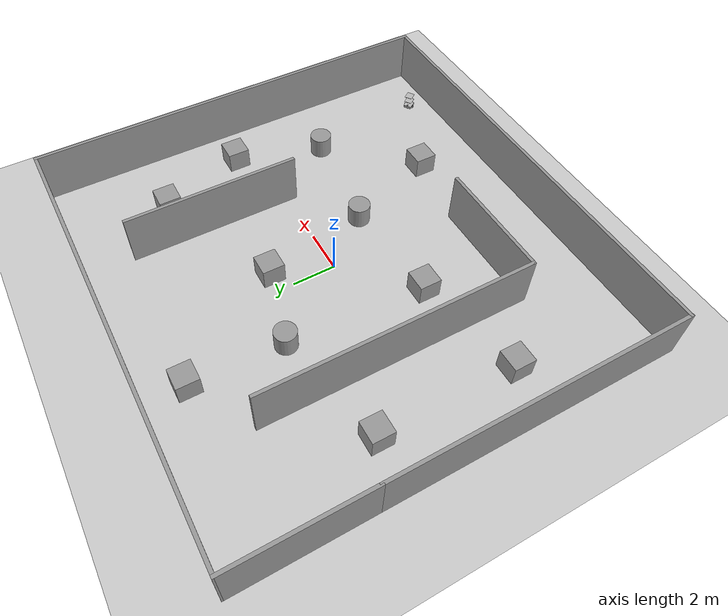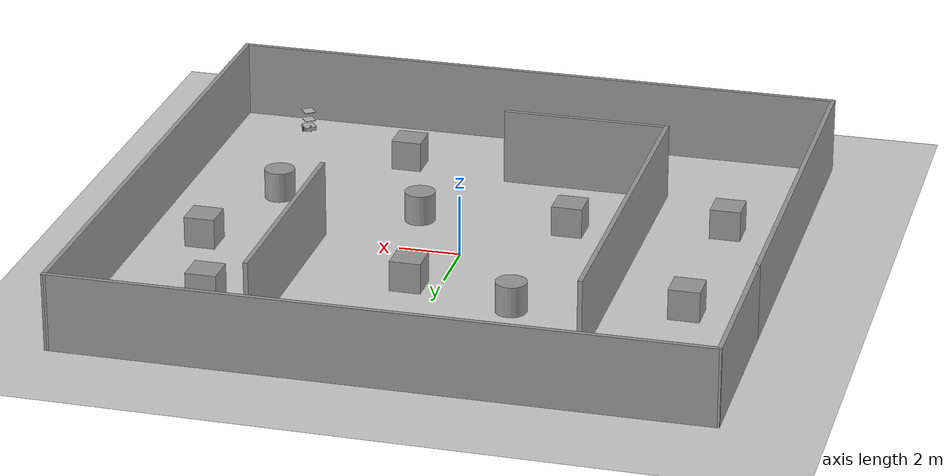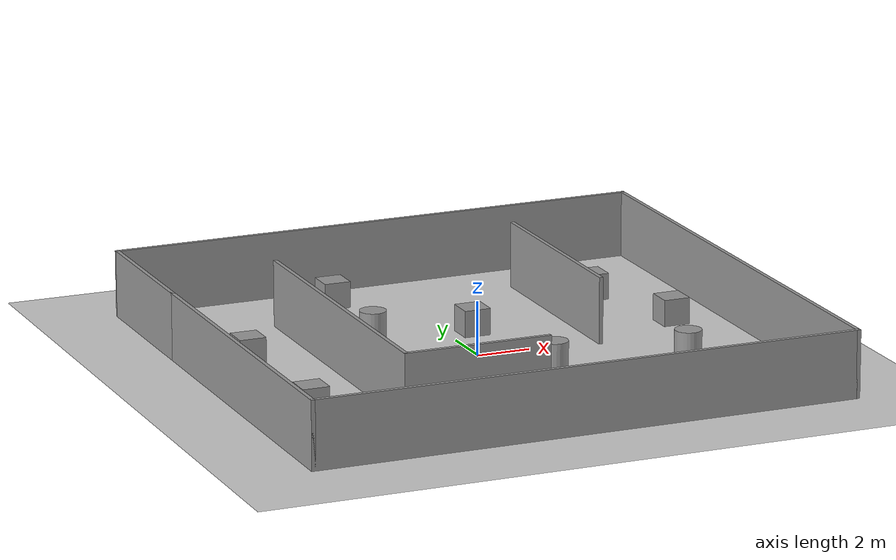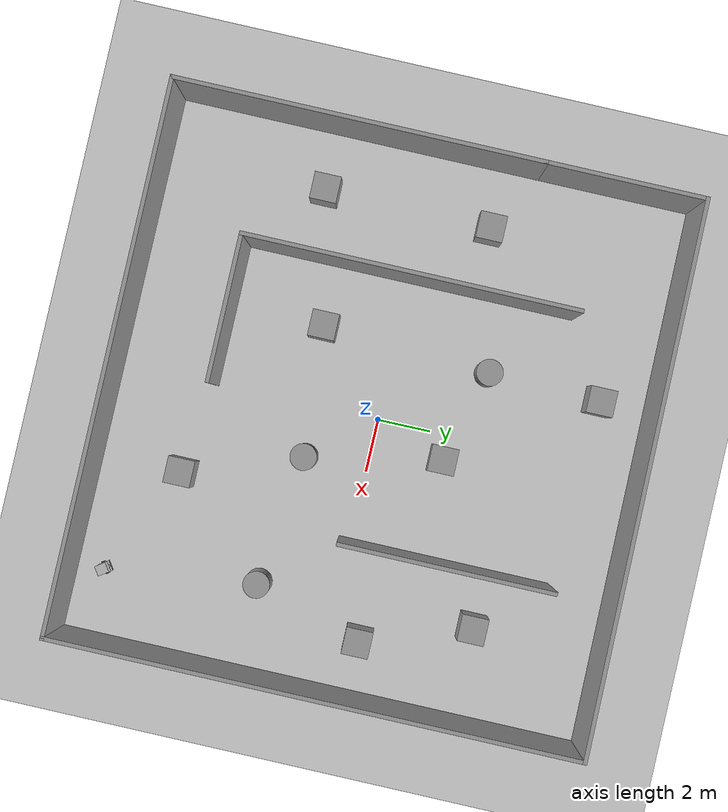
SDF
<sdf version="1.7">
 <world name="default">
  <light name="sun" type="directional">
   <pose>0 0 10 0 -0 0</pose>
   <diffuse>0.8 0.8 0.8 1</diffuse>
   <specular>0.2 0.2 0.2 1</specular>
   <attenuation>
    <range>1000</range>
    <constant>0.9</constant>
    <linear>0.01</linear>
    <quadratic>0.001</quadratic>
   </attenuation>
   <direction>-0.5 0.1 -0.9</direction>
   <spot><inner_angle>0</inner_angle><outer_angle>0</outer_angle><falloff>0</falloff></spot>
  </light>
  <model name="ground_plane">
   <static>1</static>
   <link name="link">
    <collision name="collision">
     <geometry><plane><normal>0 0 1</normal><size>100 100</size></plane></geometry>
     <surface><friction><ode><mu>100</mu><mu2>50</mu2></ode></friction></surface>
    </collision>
    <visual name="visual">
     <cast_shadows>0</cast_shadows>
     <geometry><plane><normal>0 0 1</normal><size>100 100</size></plane></geometry>
     <material>
      <script><uri>file://media/materials/scripts/gazebo.material</uri><name>Gazebo/Grey</name></script>
     </material>
    </visual>
   </link>
  </model>
  <gravity>0 0 -9.8</gravity>
  <magnetic_field>6e-06 2.3e-05 -4.2e-05</magnetic_field>
  <atmosphere type="adiabatic"/>
  <physics type="ode">
   <max_step_size>0.001</max_step_size>
   <real_time_factor>1</real_time_factor>
   <real_time_update_rate>1000</real_time_update_rate>
  </physics>
  <scene><ambient>0.4 0.4 0.4 1</ambient><background>0.7 0.7 0.7 1</background><shadows>1</shadows></scene>
  <audio><device>default</device></audio>
  <spherical_coordinates>
   <surface_model>EARTH_WGS84</surface_model>
   <latitude_deg>0</latitude_deg>
   <longitude_deg>0</longitude_deg>
   <elevation>0</elevation>
   <heading_deg>0</heading_deg>
  </spherical_coordinates>
  <model name="food_service_robot">
   <link name="base_footprint">
    <inertial>
     <pose>0.001762 0 0.131857 0 -0 0</pose>
     <mass>10.5</mass>
     <inertia>
      <ixx>0.15075</ixx>
      <ixy>0</ixy>
      <ixz>-0.00172314</ixz>
      <iyy>0.199796</iyy>
      <iyz>0</iyz>
      <izz>0.316013</izz>
     </inertia>
    </inertial>
    <collision name="base_footprint_fixed_joint_lump__base_link_collision">
     <pose>0 0 0.135 0 -0 0</pose>
     <geometry><box><size>0.45 0.4 0.12</size></box></geometry>
    </collision>
    <collision name="base_footprint_fixed_joint_lump__front_caster_collision_1">
     <pose>0.16 0 0.03 0 -0 0</pose>
     <geometry><sphere><radius>0.03</radius></sphere></geometry>
     <surface><friction><ode><mu>0.001</mu><mu2>0.001</mu2></ode></friction></surface>
    </collision>
    <collision name="base_footprint_fixed_joint_lump__laser_frame_collision_2">
     <pose>0.185 0 0.225 0 -0 0</pose>
     <geometry><cylinder><length>0.04</length><radius>0.035</radius></cylinder></geometry>
    </collision>
    <collision name="base_footprint_fixed_joint_lump__rear_caster_collision_3">
     <pose>-0.16 0 0.03 0 -0 0</pose>
     <geometry><sphere><radius>0.03</radius></sphere></geometry>
     <surface><friction><ode><mu>0.001</mu><mu2>0.001</mu2></ode></friction></surface>
    </collision>
    <collision name="base_footprint_fixed_joint_lump__tray_level_1_tray_collision_4">
     <pose>0 0 0.425 0 -0 0</pose>
     <geometry><box><size>0.42 0.38 0.015</size></box></geometry>
    </collision>
    <collision name="base_footprint_fixed_joint_lump__tray_level_2_tray_collision_5">
     <pose>0 0 0.725 0 -0 0</pose>
     <geometry><box><size>0.42 0.38 0.015</size></box></geometry>
    </collision>
    <visual name="base_footprint_fixed_joint_lump__base_link_visual">
     <pose>0 0 0.135 0 -0 0</pose>
     <geometry><box><size>0.45 0.4 0.12</size></box></geometry>
    </visual>
    <visual name="base_footprint_fixed_joint_lump__front_caster_visual_1">
     <pose>0.16 0 0.03 0 -0 0</pose>
     <geometry><sphere><radius>0.03</radius></sphere></geometry>
     <material>
      <script><name>Gazebo/White</name><uri>file://media/materials/scripts/gazebo.material</uri></script>
     </material>
    </visual>
    <visual name="base_footprint_fixed_joint_lump__laser_frame_visual_2">
     <pose>0.185 0 0.225 0 -0 0</pose>
     <geometry><cylinder><length>0.04</length><radius>0.035</radius></cylinder></geometry>
    </visual>
    <visual name="base_footprint_fixed_joint_lump__rear_caster_visual_3">
     <pose>-0.16 0 0.03 0 -0 0</pose>
     <geometry><sphere><radius>0.03</radius></sphere></geometry>
     <material>
      <script><name>Gazebo/White</name><uri>file://media/materials/scripts/gazebo.material</uri></script>
     </material>
    </visual>
    <visual name="base_footprint_fixed_joint_lump__tray_level_1_tray_visual_4">
     <pose>0 0 0.425 0 -0 0</pose>
     <geometry><box><size>0.42 0.38 0.015</size></box></geometry>
    </visual>
    <visual name="base_footprint_fixed_joint_lump__tray_level_2_tray_visual_5">
     <pose>0 0 0.725 0 -0 0</pose>
     <geometry><box><size>0.42 0.38 0.015</size></box></geometry>
    </visual>
    <sensor name="lidar_sensor" type="ray">
     <always_on>1</always_on>
     <visualize>1</visualize>
     <update_rate>10</update_rate>
     <ray>
      <scan>
       <horizontal>
        <samples>360</samples>
        <resolution>1</resolution>
        <min_angle>-3.14159</min_angle>
        <max_angle>3.14159</max_angle>
       </horizontal>
       <vertical><samples>1</samples><min_angle>0</min_angle><max_angle>0</max_angle></vertical>
      </scan>
      <range><min>0.12</min><max>12</max><resolution>0.01</resolution></range>
     </ray>
     <plugin name="gazebo_ros_laser_controller" filename="libgazebo_ros_ray_sensor.so">
      <ros><remapping>~/out:=scan</remapping></ros>
      <output_type>sensor_msgs/LaserScan</output_type>
      <frame_name>laser_frame</frame_name>
     </plugin>
     <pose>0.185 0 0.225 0 -0 0</pose>
    </sensor>
   </link>
   <joint name="left_wheel_joint" type="revolute">
    <pose relative_to="base_footprint">0 0.22 0.075 -1.5708 0 0</pose>
    <parent>base_footprint</parent>
    <child>left_wheel</child>
    <axis>
     <xyz>0 0 1</xyz>
     <limit><lower>-1e+16</lower><upper>1e+16</upper></limit>
     <dynamics><spring_reference>0</spring_reference><spring_stiffness>0</spring_stiffness></dynamics>
    </axis>
   </joint>
   <link name="left_wheel">
    <pose relative_to="left_wheel_joint">0 0 0 0 -0 0</pose>
    <inertial>
     <mass>0.8</mass>
     <inertia>
      <ixx>0.00123167</ixx>
      <ixy>0</ixy>
      <ixz>0</ixz>
      <iyy>0.00123167</iyy>
      <iyz>0</iyz>
      <izz>0.00225</izz>
     </inertia>
    </inertial>
    <collision name="left_wheel_collision">
     <geometry><cylinder><length>0.04</length><radius>0.075</radius></cylinder></geometry>
     <surface><friction><ode><mu>1</mu><mu2>1</mu2></ode></friction></surface>
    </collision>
    <visual name="left_wheel_visual">
     <geometry><cylinder><length>0.04</length><radius>0.075</radius></cylinder></geometry>
     <material>
      <script><name>Gazebo/Black</name><uri>file://media/materials/scripts/gazebo.material</uri></script>
     </material>
    </visual>
   </link>
   <joint name="right_wheel_joint" type="revolute">
    <pose relative_to="base_footprint">0 -0.22 0.075 -1.5708 0 0</pose>
    <parent>base_footprint</parent>
    <child>right_wheel</child>
    <axis>
     <xyz>0 0 1</xyz>
     <limit><lower>-1e+16</lower><upper>1e+16</upper></limit>
     <dynamics><spring_reference>0</spring_reference><spring_stiffness>0</spring_stiffness></dynamics>
    </axis>
   </joint>
   <link name="right_wheel">
    <pose relative_to="right_wheel_joint">0 0 0 0 -0 0</pose>
    <inertial>
     <mass>0.8</mass>
     <inertia>
      <ixx>0.00123167</ixx>
      <ixy>0</ixy>
      <ixz>0</ixz>
      <iyy>0.00123167</iyy>
      <iyz>0</iyz>
      <izz>0.00225</izz>
     </inertia>
    </inertial>
    <collision name="right_wheel_collision">
     <geometry><cylinder><length>0.04</length><radius>0.075</radius></cylinder></geometry>
     <surface><friction><ode><mu>1</mu><mu2>1</mu2></ode></friction></surface>
    </collision>
    <visual name="right_wheel_visual">
     <geometry><cylinder><length>0.04</length><radius>0.075</radius></cylinder></geometry>
     <material>
      <script><name>Gazebo/Black</name><uri>file://media/materials/scripts/gazebo.material</uri></script>
     </material>
    </visual>
   </link>
   <static>0</static>
   <plugin name="diff_drive" filename="libgazebo_ros_diff_drive.so">
    <left_joint>left_wheel_joint</left_joint>
    <right_joint>right_wheel_joint</right_joint>
    <wheel_separation>0.44</wheel_separation>
    <wheel_diameter>0.15</wheel_diameter>
    <max_wheel_torque>20</max_wheel_torque>
    <max_wheel_acceleration>1.0</max_wheel_acceleration>
    <command_topic>cmd_vel</command_topic>
    <odometry_topic>odom</odometry_topic>
    <odometry_frame>odom</odometry_frame>
    <robot_base_frame>base_footprint</robot_base_frame>
    <publish_odom>1</publish_odom>
    <publish_odom_tf>1</publish_odom_tf>
    <publish_wheel_tf>1</publish_wheel_tf>
   </plugin>
   <pose>7.6526 -8.68233 -0 0 -0 2.17398</pose>
  </model>
  <model name="gazebo_worlds">
   <pose>-0.00352 -0.001781 0 0 -0 0</pose>
   <link name="Wall_11">
    <collision name="Wall_11_Collision">
     <geometry><box><size>6 0.15 2.5</size></box></geometry>
     <pose>0 0 1.25 0 -0 0</pose>
    </collision>
    <visual name="Wall_11_Visual">
     <pose>0 0 1.25 0 -0 0</pose>
     <geometry><box><size>6 0.15 2.5</size></box></geometry>
     <material>
      <script><uri>file://media/materials/scripts/gazebo.material</uri><name>Gazebo/Grey</name></script>
      <ambient>1 1 1 1</ambient>
     </material>
     <meta><layer>0</layer></meta>
    </visual>
    <pose>-10.175 6.72473 0 0 -0 1.5708</pose>
   </link>
   <link name="Wall_12">
    <collision name="Wall_12_Collision">
     <geometry><box><size>20.5006 0.15 2.5</size></box></geometry>
     <pose>0 0 1.25 0 -0 0</pose>
    </collision>
    <visual name="Wall_12_Visual">
     <pose>0 0 1.25 0 -0 0</pose>
     <geometry><box><size>20.5006 0.15 2.5</size></box></geometry>
     <material>
      <script><uri>file://media/materials/scripts/gazebo.material</uri><name>Gazebo/Grey</name></script>
      <ambient>1 1 1 1</ambient>
     </material>
     <meta><layer>0</layer></meta>
    </visual>
    <pose>-0 9.72472 0 0 -0 0.007371</pose>
   </link>
   <link name="Wall_14">
    <collision name="Wall_14_Collision">
     <geometry><box><size>12.5 0.15 2.5</size></box></geometry>
     <pose>0 0 1.25 0 -0 0</pose>
    </collision>
    <visual name="Wall_14_Visual">
     <pose>0 0 1.25 0 -0 0</pose>
     <geometry><box><size>12.5 0.15 2.5</size></box></geometry>
     <material>
      <script><uri>file://media/materials/scripts/gazebo.material</uri><name>Gazebo/Grey</name></script>
      <ambient>1 1 1 1</ambient>
     </material>
     <meta><layer>0</layer></meta>
    </visual>
    <pose>-5.31682 0.010485 0 0 -0 -1.5708</pose>
   </link>
   <link name="Wall_15">
    <collision name="Wall_15_Collision">
     <geometry><box><size>5.5 0.15 2.5</size></box></geometry>
     <pose>0 0 1.25 0 -0 0</pose>
    </collision>
    <visual name="Wall_15_Visual">
     <pose>0 0 1.25 0 -0 0</pose>
     <geometry><box><size>5.5 0.15 2.5</size></box></geometry>
     <material>
      <script><uri>file://media/materials/scripts/gazebo.material</uri><name>Gazebo/Grey</name></script>
      <ambient>1 1 1 1</ambient>
     </material>
     <meta><layer>0</layer></meta>
    </visual>
    <pose>-2.64182 -6.16451 0 0 -0 0</pose>
   </link>
   <link name="Wall_17">
    <collision name="Wall_17_Collision">
     <geometry><box><size>8 0.15 2.5</size></box></geometry>
     <pose>0 0 1.25 0 -0 0</pose>
    </collision>
    <visual name="Wall_17_Visual">
     <pose>0 0 1.25 0 -0 0</pose>
     <geometry><box><size>8 0.15 2.5</size></box></geometry>
     <material>
      <script><uri>file://media/materials/scripts/gazebo.material</uri><name>Gazebo/Grey</name></script>
      <ambient>1 1 1 1</ambient>
     </material>
     <meta><layer>0</layer></meta>
    </visual>
    <pose>4.63525 3.55506 0 0 -0 -1.5708</pose>
   </link>
   <link name="Wall_2">
    <collision name="Wall_2_Collision">
     <geometry><box><size>13.75 0.15 2.5</size></box></geometry>
     <pose>0 0 1.25 0 -0 0</pose>
    </collision>
    <visual name="Wall_2_Visual">
     <pose>0 0 1.25 0 -0 0</pose>
     <geometry><box><size>13.75 0.15 2.5</size></box></geometry>
     <material>
      <script><uri>file://media/materials/scripts/gazebo.material</uri><name>Gazebo/Grey</name></script>
      <ambient>1 1 1 1</ambient>
     </material>
     <meta><layer>0</layer></meta>
    </visual>
    <pose>-10.175 -3.00027 0 0 -0 -1.5708</pose>
   </link>
   <link name="Wall_3">
    <collision name="Wall_3_Collision">
     <geometry><box><size>20.5 0.15 2.5</size></box></geometry>
     <pose>0 0 1.25 0 -0 0</pose>
    </collision>
    <visual name="Wall_3_Visual">
     <pose>0 0 1.25 0 -0 0</pose>
     <geometry><box><size>20.5 0.15 2.5</size></box></geometry>
     <material>
      <script><uri>file://media/materials/scripts/gazebo.material</uri><name>Gazebo/Grey</name></script>
      <ambient>1 1 1 1</ambient>
     </material>
     <meta><layer>0</layer></meta>
    </visual>
    <pose>-0 -9.80027 0 0 -0 0</pose>
   </link>
   <link name="Wall_4">
    <collision name="Wall_4_Collision">
     <geometry><box><size>19.75 0.15 2.5</size></box></geometry>
     <pose>0 0 1.25 0 -0 0</pose>
    </collision>
    <visual name="Wall_4_Visual">
     <pose>0 0 1.25 0 -0 0</pose>
     <geometry><box><size>19.75 0.15 2.5</size></box></geometry>
     <material>
      <script><uri>file://media/materials/scripts/gazebo.material</uri><name>Gazebo/Grey</name></script>
      <ambient>1 1 1 1</ambient>
     </material>
     <meta><layer>0</layer></meta>
    </visual>
    <pose>10.175 -0.000275 0 0 -0 1.5708</pose>
   </link>
   <static>1</static>
  </model>
  <model name="unit_box">
   <static>1</static>
   <pose>-7.81834 2.49838 0.499995 0 1e-05 0</pose>
   <link name="link">
    <inertial>
     <mass>1</mass>
     <inertia>
      <ixx>0.166667</ixx>
      <ixy>0</ixy>
      <ixz>0</ixz>
      <iyy>0.166667</iyy>
      <iyz>0</iyz>
      <izz>0.166667</izz>
     </inertia>
    </inertial>
    <collision name="collision"><geometry><box><size>1 1 1</size></box></geometry></collision>
    <visual name="visual">
     <geometry><box><size>1 1 1</size></box></geometry>
     <material>
      <script><name>Gazebo/Grey</name><uri>file://media/materials/scripts/gazebo.material</uri></script>
     </material>
    </visual>
   </link>
  </model>
  <model name="unit_box_0">
   <static>1</static>
   <pose>-7.86996 -3.77268 0.499995 -1e-05 -0 -0</pose>
   <link name="link">
    <inertial>
     <mass>1</mass>
     <inertia>
      <ixx>0.166667</ixx>
      <ixy>0</ixy>
      <ixz>0</ixz>
      <iyy>0.166667</iyy>
      <iyz>0</iyz>
      <izz>0.166667</izz>
     </inertia>
    </inertial>
    <collision name="collision"><geometry><box><size>1 1 1</size></box></geometry></collision>
    <visual name="visual">
     <geometry><box><size>1 1 1</size></box></geometry>
     <material>
      <script><name>Gazebo/Grey</name><uri>file://media/materials/scripts/gazebo.material</uri></script>
     </material>
    </visual>
   </link>
  </model>
  <model name="unit_cylinder">
   <static>1</static>
   <pose>-2.57526 3.62168 0.499992 -3e-06 3e-06 0</pose>
   <link name="link">
    <inertial>
     <mass>1</mass>
     <inertia><ixx>0.145833</ixx><ixy>0</ixy><ixz>0</ixz><iyy>0.145833</iyy><iyz>0</iyz><izz>0.125</izz></inertia>
    </inertial>
    <collision name="collision">
     <geometry><cylinder><radius>0.5</radius><length>1</length></cylinder></geometry>
    </collision>
    <visual name="visual">
     <geometry><cylinder><radius>0.5</radius><length>1</length></cylinder></geometry>
     <material>
      <script><name>Gazebo/Grey</name><uri>file://media/materials/scripts/gazebo.material</uri></script>
     </material>
    </visual>
   </link>
  </model>
  <model name="unit_box_1">
   <static>1</static>
   <pose>-2.92909 -2.715 0.499995 -1e-05 -0 -0</pose>
   <link name="link">
    <inertial>
     <mass>1</mass>
     <inertia>
      <ixx>0.166667</ixx>
      <ixy>0</ixy>
      <ixz>0</ixz>
      <iyy>0.166667</iyy>
      <iyz>0</iyz>
      <izz>0.166667</izz>
     </inertia>
    </inertial>
    <collision name="collision"><geometry><box><size>1 1 1</size></box></geometry></collision>
    <visual name="visual">
     <geometry><box><size>1 1 1</size></box></geometry>
     <material>
      <script><name>Gazebo/Grey</name><uri>file://media/materials/scripts/gazebo.material</uri></script>
     </material>
    </visual>
   </link>
  </model>
  <model name="unit_box_2">
   <static>1</static>
   <pose>0.931699 2.66744 0.499995 0 1e-05 0</pose>
   <link name="link">
    <inertial>
     <mass>1</mass>
     <inertia>
      <ixx>0.166667</ixx>
      <ixy>0</ixy>
      <ixz>0</ixz>
      <iyy>0.166667</iyy>
      <iyz>0</iyz>
      <izz>0.166667</izz>
     </inertia>
    </inertial>
    <collision name="collision"><geometry><box><size>1 1 1</size></box></geometry></collision>
    <visual name="visual">
     <geometry><box><size>1 1 1</size></box></geometry>
     <material>
      <script><name>Gazebo/Grey</name><uri>file://media/materials/scripts/gazebo.material</uri></script>
     </material>
    </visual>
   </link>
  </model>
  <model name="unit_box_3">
   <static>1</static>
   <pose>6.74863 5.1113 0.499995 -1e-05 -0 -0</pose>
   <link name="link">
    <inertial>
     <mass>1</mass>
     <inertia>
      <ixx>0.166667</ixx>
      <ixy>0</ixy>
      <ixz>0</ixz>
      <iyy>0.166667</iyy>
      <iyz>0</iyz>
      <izz>0.166667</izz>
     </inertia>
    </inertial>
    <collision name="collision"><geometry><box><size>1 1 1</size></box></geometry></collision>
    <visual name="visual">
     <geometry><box><size>1 1 1</size></box></geometry>
     <material>
      <script><name>Gazebo/Grey</name><uri>file://media/materials/scripts/gazebo.material</uri></script>
     </material>
    </visual>
   </link>
  </model>
  <model name="unit_box_4">
   <static>1</static>
   <pose>8.1473 1.08418 0.499995 0 1e-05 0</pose>
   <link name="link">
    <inertial>
     <mass>1</mass>
     <inertia>
      <ixx>0.166667</ixx>
      <ixy>0</ixy>
      <ixz>0</ixz>
      <iyy>0.166667</iyy>
      <iyz>0</iyz>
      <izz>0.166667</izz>
     </inertia>
    </inertial>
    <collision name="collision"><geometry><box><size>1 1 1</size></box></geometry></collision>
    <visual name="visual">
     <geometry><box><size>1 1 1</size></box></geometry>
     <material>
      <script><name>Gazebo/Grey</name><uri>file://media/materials/scripts/gazebo.material</uri></script>
     </material>
    </visual>
   </link>
  </model>
  <model name="unit_cylinder_0">
   <static>1</static>
   <pose>1.95883 -2.35378 0.499993 -3e-06 -3e-06 0</pose>
   <link name="link">
    <inertial>
     <mass>1</mass>
     <inertia><ixx>0.145833</ixx><ixy>0</ixy><ixz>0</ixz><iyy>0.145833</iyy><iyz>0</iyz><izz>0.125</izz></inertia>
    </inertial>
    <collision name="collision">
     <geometry><cylinder><radius>0.5</radius><length>1</length></cylinder></geometry>
    </collision>
    <visual name="visual">
     <geometry><cylinder><radius>0.5</radius><length>1</length></cylinder></geometry>
     <material>
      <script><name>Gazebo/Grey</name><uri>file://media/materials/scripts/gazebo.material</uri></script>
     </material>
    </visual>
   </link>
  </model>
  <model name="unit_box_5">
   <static>1</static>
   <pose>3.49937 -6.6748 0.499995 0 1e-05 0</pose>
   <link name="link">
    <inertial>
     <mass>1</mass>
     <inertia>
      <ixx>0.166667</ixx>
      <ixy>0</ixy>
      <ixz>0</ixz>
      <iyy>0.166667</iyy>
      <iyz>0</iyz>
      <izz>0.166667</izz>
     </inertia>
    </inertial>
    <collision name="collision"><geometry><box><size>1 1 1</size></box></geometry></collision>
    <visual name="visual">
     <geometry><box><size>1 1 1</size></box></geometry>
     <material>
      <script><name>Gazebo/Grey</name><uri>file://media/materials/scripts/gazebo.material</uri></script>
     </material>
    </visual>
   </link>
  </model>
  <model name="unit_cylinder_1">
   <static>1</static>
   <pose>6.8974 -2.9877 0.499993 -3e-06 -4e-06 -0</pose>
   <link name="link">
    <inertial>
     <mass>1</mass>
     <inertia><ixx>0.145833</ixx><ixy>0</ixy><ixz>0</ixz><iyy>0.145833</iyy><iyz>0</iyz><izz>0.125</izz></inertia>
    </inertial>
    <collision name="collision">
     <geometry><cylinder><radius>0.5</radius><length>1</length></cylinder></geometry>
    </collision>
    <visual name="visual">
     <geometry><cylinder><radius>0.5</radius><length>1</length></cylinder></geometry>
     <material>
      <script><name>Gazebo/Grey</name><uri>file://media/materials/scripts/gazebo.material</uri></script>
     </material>
    </visual>
   </link>
  </model>
  <model name="unit_box_6">
   <static>1</static>
   <pose>-2.45625 7.86251 0.5 0 -0 0</pose>
   <link name="link">
    <inertial>
     <mass>1</mass>
     <inertia>
      <ixx>0.166667</ixx>
      <ixy>0</ixy>
      <ixz>0</ixz>
      <iyy>0.166667</iyy>
      <iyz>0</iyz>
      <izz>0.166667</izz>
     </inertia>
    </inertial>
    <collision name="collision"><geometry><box><size>1 1 1</size></box></geometry></collision>
    <visual name="visual">
     <geometry><box><size>1 1 1</size></box></geometry>
     <material>
      <script><name>Gazebo/Grey</name><uri>file://media/materials/scripts/gazebo.material</uri></script>
     </material>
    </visual>
   </link>
  </model>
 </world>
</sdf>
